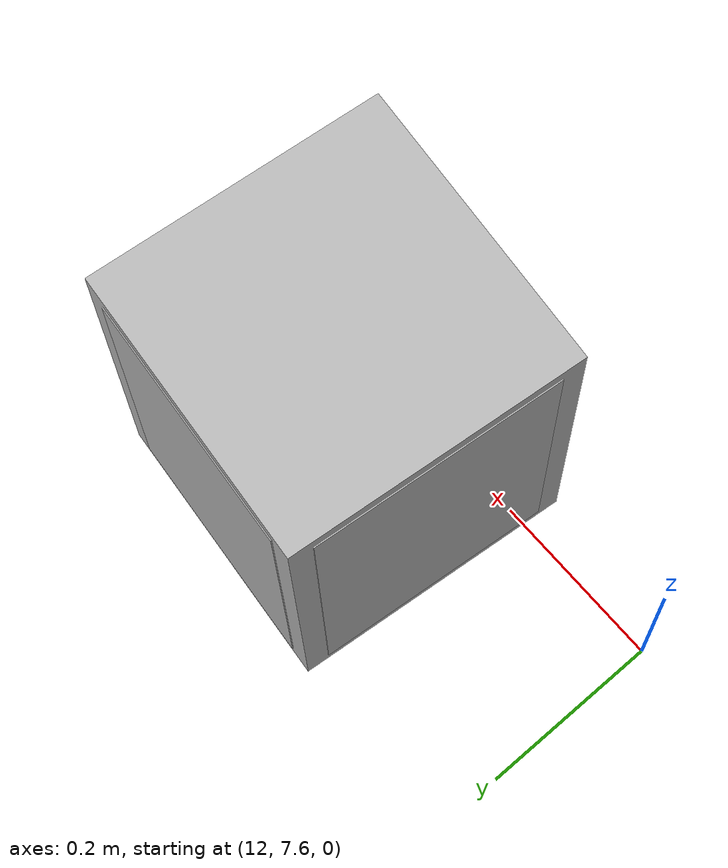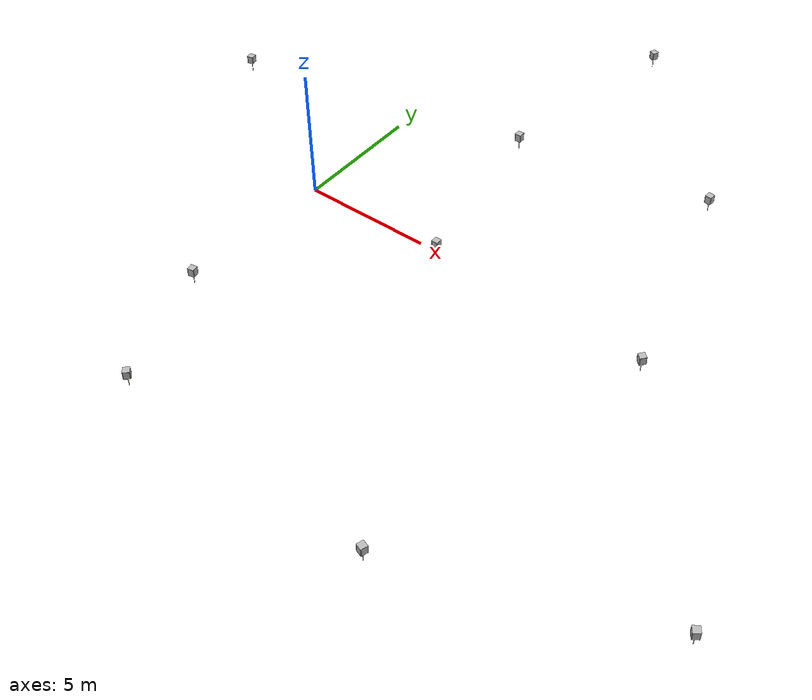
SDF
<sdf version="1.7">
 <world name="marsyard2020">
  <physics type="ode">
   <ode>
    <solver>
     <friction_model>cone_model</friction_model>
     <type>quick</type>
     <iters>50</iters>
     <sor>1.3</sor>
     <use_dynamic_moi_rescaling>0</use_dynamic_moi_rescaling>
    </solver>
    <constraints>
     <cfm>0</cfm>
     <erp>0.2</erp>
     <contact_max_correcting_vel>100</contact_max_correcting_vel>
     <contact_surface_layer>0.001</contact_surface_layer>
    </constraints>
   </ode>
   <max_step_size>0.001</max_step_size>
   <real_time_factor>1</real_time_factor>
   <real_time_update_rate>1000</real_time_update_rate>
  </physics>
  <light name="sun" type="directional">
   <pose>0 0 100 0.5 0.5 0</pose>
   <diffuse>1 1 1 1</diffuse>
   <specular>0.1 0.1 0.1 1</specular>
   <direction>0.1 0.1 -0.9</direction>
   <attenuation>
    <range>20</range>
    <constant>0.5</constant>
    <linear>0.01</linear>
    <quadratic>0.001</quadratic>
   </attenuation>
   <spot><inner_angle>0</inner_angle><outer_angle>0</outer_angle><falloff>0</falloff></spot>
  </light>
  <spherical_coordinates>
   <surface_model>EARTH_WGS84</surface_model>
   <latitude_deg>43.5655</latitude_deg>
   <longitude_deg>1.474</longitude_deg>
   <elevation>150</elevation>
   <heading_deg>180</heading_deg>
  </spherical_coordinates>
  <scene>
   <ambient>0.6 0.6 0.6 1</ambient>
   <sky><clouds><speed>12</speed></clouds></sky>
   <shadows>1</shadows>
   <origin_visual>0</origin_visual>
   <background>0.7 0.7 0.7 1</background>
  </scene>
  <model name="landmark1">
   <pose>5.70277 0 -0.065271 0 -0 0</pose>
   <static>1</static>
   <link name="landmark">
    <visual name="pole_visual">
     <pose>0 0 0.1 0 -0 0</pose>
     <geometry><cylinder><radius>0.01</radius><length>0.4</length></cylinder></geometry>
     <material><script><name>Gazebo/Wood</name><uri>__default__</uri></script></material>
    </visual>
    <collision name="pole_collision">
     <pose>0 0 0.1 0 -0 0</pose>
     <geometry><cylinder><radius>0.01</radius><length>0.4</length></cylinder></geometry>
    </collision>
    <visual name="box_visual">
     <pose>0 0 0.46 0 -0 0</pose>
     <geometry><box><size>0.25 0.25 0.32</size></box></geometry>
     <material><script><name>ERC_Landmark/Box</name><uri>__default__</uri></script></material>
    </visual>
    <collision name="box_collision">
     <pose>0 0 0.46 0 -0 0</pose>
     <geometry><box><size>0.25 0.25 0.32</size></box></geometry>
    </collision>
    <visual name="sheet1">
     <pose>0 0.1235 0.46 0 -0 0</pose>
     <geometry><box><size>0.21 0.005 0.297</size></box></geometry>
     <material><script><name>ERC_Landmark/1</name><uri>__default__</uri></script></material>
    </visual>
    <visual name="sheet2">
     <pose>0 -0.1235 0.46 0 -0 0</pose>
     <geometry><box><size>0.21 0.005 0.297</size></box></geometry>
     <material><script><name>ERC_Landmark/1</name><uri>__default__</uri></script></material>
    </visual>
    <visual name="sheet3">
     <pose>0.1235 0 0.46 0 -0 1.5708</pose>
     <geometry><box><size>0.21 0.005 0.297</size></box></geometry>
     <material><script><name>ERC_Landmark/1</name><uri>__default__</uri></script></material>
    </visual>
    <visual name="sheet4">
     <pose>-0.1235 0 0.46 0 -0 1.5708</pose>
     <geometry><box><size>0.21 0.005 0.297</size></box></geometry>
     <material><script><name>ERC_Landmark/1</name><uri>__default__</uri></script></material>
    </visual>
   </link>
  </model>
  <model name="landmark2">
   <pose>4.50399 6.82642 -0.000455 0 -0 0</pose>
   <static>1</static>
   <link name="landmark">
    <visual name="pole_visual">
     <pose>0 0 0.1 0 -0 0</pose>
     <geometry><cylinder><radius>0.01</radius><length>0.4</length></cylinder></geometry>
     <material><script><name>Gazebo/Wood</name><uri>__default__</uri></script></material>
    </visual>
    <collision name="pole_collision">
     <pose>0 0 0.1 0 -0 0</pose>
     <geometry><cylinder><radius>0.01</radius><length>0.4</length></cylinder></geometry>
    </collision>
    <visual name="box_visual">
     <pose>0 0 0.46 0 -0 0</pose>
     <geometry><box><size>0.25 0.25 0.32</size></box></geometry>
     <material><script><name>ERC_Landmark/Box</name><uri>__default__</uri></script></material>
    </visual>
    <collision name="box_collision">
     <pose>0 0 0.46 0 -0 0</pose>
     <geometry><box><size>0.25 0.25 0.32</size></box></geometry>
    </collision>
    <visual name="sheet1">
     <pose>0 0.1235 0.46 0 -0 0</pose>
     <geometry><box><size>0.21 0.005 0.297</size></box></geometry>
     <material><script><name>ERC_Landmark/2</name><uri>__default__</uri></script></material>
    </visual>
    <visual name="sheet2">
     <pose>0 -0.1235 0.46 0 -0 0</pose>
     <geometry><box><size>0.21 0.005 0.297</size></box></geometry>
     <material><script><name>ERC_Landmark/2</name><uri>__default__</uri></script></material>
    </visual>
    <visual name="sheet3">
     <pose>0.1235 0 0.46 0 -0 1.5708</pose>
     <geometry><box><size>0.21 0.005 0.297</size></box></geometry>
     <material><script><name>ERC_Landmark/2</name><uri>__default__</uri></script></material>
    </visual>
    <visual name="sheet4">
     <pose>-0.1235 0 0.46 0 -0 1.5708</pose>
     <geometry><box><size>0.21 0.005 0.297</size></box></geometry>
     <material><script><name>ERC_Landmark/2</name><uri>__default__</uri></script></material>
    </visual>
   </link>
  </model>
  <model name="landmark3">
   <pose>14.3295 -0.4288 -0.087178 0 -0 0.86</pose>
   <static>1</static>
   <link name="landmark">
    <visual name="pole_visual">
     <pose>0 0 0.1 0 -0 0</pose>
     <geometry><cylinder><radius>0.01</radius><length>0.4</length></cylinder></geometry>
     <material><script><name>Gazebo/Wood</name><uri>__default__</uri></script></material>
    </visual>
    <collision name="pole_collision">
     <pose>0 0 0.1 0 -0 0</pose>
     <geometry><cylinder><radius>0.01</radius><length>0.4</length></cylinder></geometry>
    </collision>
    <visual name="box_visual">
     <pose>0 0 0.46 0 -0 0</pose>
     <geometry><box><size>0.25 0.25 0.32</size></box></geometry>
     <material><script><name>ERC_Landmark/Box</name><uri>__default__</uri></script></material>
    </visual>
    <collision name="box_collision">
     <pose>0 0 0.46 0 -0 0</pose>
     <geometry><box><size>0.25 0.25 0.32</size></box></geometry>
    </collision>
    <visual name="sheet1">
     <pose>0 0.1235 0.46 0 -0 0</pose>
     <geometry><box><size>0.21 0.005 0.297</size></box></geometry>
     <material><script><name>ERC_Landmark/3</name><uri>__default__</uri></script></material>
    </visual>
    <visual name="sheet2">
     <pose>0 -0.1235 0.46 0 -0 0</pose>
     <geometry><box><size>0.21 0.005 0.297</size></box></geometry>
     <material><script><name>ERC_Landmark/3</name><uri>__default__</uri></script></material>
    </visual>
    <visual name="sheet3">
     <pose>0.1235 0 0.46 0 -0 1.5708</pose>
     <geometry><box><size>0.21 0.005 0.297</size></box></geometry>
     <material><script><name>ERC_Landmark/3</name><uri>__default__</uri></script></material>
    </visual>
    <visual name="sheet4">
     <pose>-0.1235 0 0.46 0 -0 1.5708</pose>
     <geometry><box><size>0.21 0.005 0.297</size></box></geometry>
     <material><script><name>ERC_Landmark/3</name><uri>__default__</uri></script></material>
    </visual>
   </link>
  </model>
  <model name="landmark4">
   <pose>29.2159 5.30052 -0.069001 0 -0 0.53</pose>
   <static>1</static>
   <link name="landmark">
    <visual name="pole_visual">
     <pose>0 0 0.1 0 -0 0</pose>
     <geometry><cylinder><radius>0.01</radius><length>0.4</length></cylinder></geometry>
     <material><script><name>Gazebo/Wood</name><uri>__default__</uri></script></material>
    </visual>
    <collision name="pole_collision">
     <pose>0 0 0.1 0 -0 0</pose>
     <geometry><cylinder><radius>0.01</radius><length>0.4</length></cylinder></geometry>
    </collision>
    <visual name="box_visual">
     <pose>0 0 0.46 0 -0 0</pose>
     <geometry><box><size>0.25 0.25 0.32</size></box></geometry>
     <material><script><name>ERC_Landmark/Box</name><uri>__default__</uri></script></material>
    </visual>
    <collision name="box_collision">
     <pose>0 0 0.46 0 -0 0</pose>
     <geometry><box><size>0.25 0.25 0.32</size></box></geometry>
    </collision>
    <visual name="sheet1">
     <pose>0 0.1235 0.46 0 -0 0</pose>
     <geometry><box><size>0.21 0.005 0.297</size></box></geometry>
     <material><script><name>ERC_Landmark/4</name><uri>__default__</uri></script></material>
    </visual>
    <visual name="sheet2">
     <pose>0 -0.1235 0.46 0 -0 0</pose>
     <geometry><box><size>0.21 0.005 0.297</size></box></geometry>
     <material><script><name>ERC_Landmark/4</name><uri>__default__</uri></script></material>
    </visual>
    <visual name="sheet3">
     <pose>0.1235 0 0.46 0 -0 1.5708</pose>
     <geometry><box><size>0.21 0.005 0.297</size></box></geometry>
     <material><script><name>ERC_Landmark/4</name><uri>__default__</uri></script></material>
    </visual>
    <visual name="sheet4">
     <pose>-0.1235 0 0.46 0 -0 1.5708</pose>
     <geometry><box><size>0.21 0.005 0.297</size></box></geometry>
     <material><script><name>ERC_Landmark/4</name><uri>__default__</uri></script></material>
    </visual>
   </link>
  </model>
  <model name="landmark5">
   <pose>12.1035 -11.7148 0.377463 0 -0 1.25</pose>
   <static>1</static>
   <link name="landmark">
    <visual name="pole_visual">
     <pose>0 0 0.1 0 -0 0</pose>
     <geometry><cylinder><radius>0.01</radius><length>0.4</length></cylinder></geometry>
     <material><script><name>Gazebo/Wood</name><uri>__default__</uri></script></material>
    </visual>
    <collision name="pole_collision">
     <pose>0 0 0.1 0 -0 0</pose>
     <geometry><cylinder><radius>0.01</radius><length>0.4</length></cylinder></geometry>
    </collision>
    <visual name="box_visual">
     <pose>0 0 0.46 0 -0 0</pose>
     <geometry><box><size>0.25 0.25 0.32</size></box></geometry>
     <material><script><name>ERC_Landmark/Box</name><uri>__default__</uri></script></material>
    </visual>
    <collision name="box_collision">
     <pose>0 0 0.46 0 -0 0</pose>
     <geometry><box><size>0.25 0.25 0.32</size></box></geometry>
    </collision>
    <visual name="sheet1">
     <pose>0 0.1235 0.46 0 -0 0</pose>
     <geometry><box><size>0.21 0.005 0.297</size></box></geometry>
     <material><script><name>ERC_Landmark/5</name><uri>__default__</uri></script></material>
    </visual>
    <visual name="sheet2">
     <pose>0 -0.1235 0.46 0 -0 0</pose>
     <geometry><box><size>0.21 0.005 0.297</size></box></geometry>
     <material><script><name>ERC_Landmark/5</name><uri>__default__</uri></script></material>
    </visual>
    <visual name="sheet3">
     <pose>0.1235 0 0.46 0 -0 1.5708</pose>
     <geometry><box><size>0.21 0.005 0.297</size></box></geometry>
     <material><script><name>ERC_Landmark/5</name><uri>__default__</uri></script></material>
    </visual>
    <visual name="sheet4">
     <pose>-0.1235 0 0.46 0 -0 1.5708</pose>
     <geometry><box><size>0.21 0.005 0.297</size></box></geometry>
     <material><script><name>ERC_Landmark/5</name><uri>__default__</uri></script></material>
    </visual>
   </link>
  </model>
  <model name="landmark6">
   <pose>-2.94666 29.2843 -2.62747 0 -0 0.73</pose>
   <static>1</static>
   <link name="landmark">
    <visual name="pole_visual">
     <pose>0 0 0.1 0 -0 0</pose>
     <geometry><cylinder><radius>0.01</radius><length>0.4</length></cylinder></geometry>
     <material><script><name>Gazebo/Wood</name><uri>__default__</uri></script></material>
    </visual>
    <collision name="pole_collision">
     <pose>0 0 0.1 0 -0 0</pose>
     <geometry><cylinder><radius>0.01</radius><length>0.4</length></cylinder></geometry>
    </collision>
    <visual name="box_visual">
     <pose>0 0 0.46 0 -0 0</pose>
     <geometry><box><size>0.25 0.25 0.32</size></box></geometry>
     <material><script><name>ERC_Landmark/Box</name><uri>__default__</uri></script></material>
    </visual>
    <collision name="box_collision">
     <pose>0 0 0.46 0 -0 0</pose>
     <geometry><box><size>0.25 0.25 0.32</size></box></geometry>
    </collision>
    <visual name="sheet1">
     <pose>0 0.1235 0.46 0 -0 0</pose>
     <geometry><box><size>0.21 0.005 0.297</size></box></geometry>
     <material><script><name>ERC_Landmark/6</name><uri>__default__</uri></script></material>
    </visual>
    <visual name="sheet2">
     <pose>0 -0.1235 0.46 0 -0 0</pose>
     <geometry><box><size>0.21 0.005 0.297</size></box></geometry>
     <material><script><name>ERC_Landmark/6</name><uri>__default__</uri></script></material>
    </visual>
    <visual name="sheet3">
     <pose>0.1235 0 0.46 0 -0 1.5708</pose>
     <geometry><box><size>0.21 0.005 0.297</size></box></geometry>
     <material><script><name>ERC_Landmark/6</name><uri>__default__</uri></script></material>
    </visual>
    <visual name="sheet4">
     <pose>-0.1235 0 0.46 0 -0 1.5708</pose>
     <geometry><box><size>0.21 0.005 0.297</size></box></geometry>
     <material><script><name>ERC_Landmark/6</name><uri>__default__</uri></script></material>
    </visual>
   </link>
  </model>
  <model name="landmark7">
   <pose>-7.46054 4.54439 -0.032864 0 -0 0.19</pose>
   <static>1</static>
   <link name="landmark">
    <visual name="pole_visual">
     <pose>0 0 0.1 0 -0 0</pose>
     <geometry><cylinder><radius>0.01</radius><length>0.4</length></cylinder></geometry>
     <material><script><name>Gazebo/Wood</name><uri>__default__</uri></script></material>
    </visual>
    <collision name="pole_collision">
     <pose>0 0 0.1 0 -0 0</pose>
     <geometry><cylinder><radius>0.01</radius><length>0.4</length></cylinder></geometry>
    </collision>
    <visual name="box_visual">
     <pose>0 0 0.46 0 -0 0</pose>
     <geometry><box><size>0.25 0.25 0.32</size></box></geometry>
     <material><script><name>ERC_Landmark/Box</name><uri>__default__</uri></script></material>
    </visual>
    <collision name="box_collision">
     <pose>0 0 0.46 0 -0 0</pose>
     <geometry><box><size>0.25 0.25 0.32</size></box></geometry>
    </collision>
    <visual name="sheet1">
     <pose>0 0.1235 0.46 0 -0 0</pose>
     <geometry><box><size>0.21 0.005 0.297</size></box></geometry>
     <material><script><name>ERC_Landmark/7</name><uri>__default__</uri></script></material>
    </visual>
    <visual name="sheet2">
     <pose>0 -0.1235 0.46 0 -0 0</pose>
     <geometry><box><size>0.21 0.005 0.297</size></box></geometry>
     <material><script><name>ERC_Landmark/7</name><uri>__default__</uri></script></material>
    </visual>
    <visual name="sheet3">
     <pose>0.1235 0 0.46 0 -0 1.5708</pose>
     <geometry><box><size>0.21 0.005 0.297</size></box></geometry>
     <material><script><name>ERC_Landmark/7</name><uri>__default__</uri></script></material>
    </visual>
    <visual name="sheet4">
     <pose>-0.1235 0 0.46 0 -0 1.5708</pose>
     <geometry><box><size>0.21 0.005 0.297</size></box></geometry>
     <material><script><name>ERC_Landmark/7</name><uri>__default__</uri></script></material>
    </visual>
   </link>
  </model>
  <model name="landmark8">
   <pose>18.567 -18.5264 0.0577 0 -0 1.16</pose>
   <static>1</static>
   <link name="landmark">
    <visual name="pole_visual">
     <pose>0 0 0.1 0 -0 0</pose>
     <geometry><cylinder><radius>0.01</radius><length>0.4</length></cylinder></geometry>
     <material><script><name>Gazebo/Wood</name><uri>__default__</uri></script></material>
    </visual>
    <collision name="pole_collision">
     <pose>0 0 0.1 0 -0 0</pose>
     <geometry><cylinder><radius>0.01</radius><length>0.4</length></cylinder></geometry>
    </collision>
    <visual name="box_visual">
     <pose>0 0 0.46 0 -0 0</pose>
     <geometry><box><size>0.25 0.25 0.32</size></box></geometry>
     <material><script><name>ERC_Landmark/Box</name><uri>__default__</uri></script></material>
    </visual>
    <collision name="box_collision">
     <pose>0 0 0.46 0 -0 0</pose>
     <geometry><box><size>0.25 0.25 0.32</size></box></geometry>
    </collision>
    <visual name="sheet1">
     <pose>0 0.1235 0.46 0 -0 0</pose>
     <geometry><box><size>0.21 0.005 0.297</size></box></geometry>
     <material><script><name>ERC_Landmark/8</name><uri>__default__</uri></script></material>
    </visual>
    <visual name="sheet2">
     <pose>0 -0.1235 0.46 0 -0 0</pose>
     <geometry><box><size>0.21 0.005 0.297</size></box></geometry>
     <material><script><name>ERC_Landmark/8</name><uri>__default__</uri></script></material>
    </visual>
    <visual name="sheet3">
     <pose>0.1235 0 0.46 0 -0 1.5708</pose>
     <geometry><box><size>0.21 0.005 0.297</size></box></geometry>
     <material><script><name>ERC_Landmark/8</name><uri>__default__</uri></script></material>
    </visual>
    <visual name="sheet4">
     <pose>-0.1235 0 0.46 0 -0 1.5708</pose>
     <geometry><box><size>0.21 0.005 0.297</size></box></geometry>
     <material><script><name>ERC_Landmark/8</name><uri>__default__</uri></script></material>
    </visual>
   </link>
  </model>
  <model name="landmark9">
   <pose>12.2289 7.78507 0.127643 0 -0 1.47</pose>
   <static>1</static>
   <link name="landmark">
    <visual name="pole_visual">
     <pose>0 0 0.1 0 -0 0</pose>
     <geometry><cylinder><radius>0.01</radius><length>0.4</length></cylinder></geometry>
     <material><script><name>Gazebo/Wood</name><uri>__default__</uri></script></material>
    </visual>
    <collision name="pole_collision">
     <pose>0 0 0.1 0 -0 0</pose>
     <geometry><cylinder><radius>0.01</radius><length>0.4</length></cylinder></geometry>
    </collision>
    <visual name="box_visual">
     <pose>0 0 0.46 0 -0 0</pose>
     <geometry><box><size>0.25 0.25 0.32</size></box></geometry>
     <material><script><name>ERC_Landmark/Box</name><uri>__default__</uri></script></material>
    </visual>
    <collision name="box_collision">
     <pose>0 0 0.46 0 -0 0</pose>
     <geometry><box><size>0.25 0.25 0.32</size></box></geometry>
    </collision>
    <visual name="sheet1">
     <pose>0 0.1235 0.46 0 -0 0</pose>
     <geometry><box><size>0.21 0.005 0.297</size></box></geometry>
     <material><script><name>ERC_Landmark/9</name><uri>__default__</uri></script></material>
    </visual>
    <visual name="sheet2">
     <pose>0 -0.1235 0.46 0 -0 0</pose>
     <geometry><box><size>0.21 0.005 0.297</size></box></geometry>
     <material><script><name>ERC_Landmark/9</name><uri>__default__</uri></script></material>
    </visual>
    <visual name="sheet3">
     <pose>0.1235 0 0.46 0 -0 1.5708</pose>
     <geometry><box><size>0.21 0.005 0.297</size></box></geometry>
     <material><script><name>ERC_Landmark/9</name><uri>__default__</uri></script></material>
    </visual>
    <visual name="sheet4">
     <pose>-0.1235 0 0.46 0 -0 1.5708</pose>
     <geometry><box><size>0.21 0.005 0.297</size></box></geometry>
     <material><script><name>ERC_Landmark/9</name><uri>__default__</uri></script></material>
    </visual>
   </link>
  </model>
  <model name="landmark10">
   <pose>20.6291 -8.1918 -0.069001 0 -0 0.61</pose>
   <static>1</static>
   <link name="landmark">
    <visual name="pole_visual">
     <pose>0 0 0.1 0 -0 0</pose>
     <geometry><cylinder><radius>0.01</radius><length>0.4</length></cylinder></geometry>
     <material><script><name>Gazebo/Wood</name><uri>__default__</uri></script></material>
    </visual>
    <collision name="pole_collision">
     <pose>0 0 0.1 0 -0 0</pose>
     <geometry><cylinder><radius>0.01</radius><length>0.4</length></cylinder></geometry>
    </collision>
    <visual name="box_visual">
     <pose>0 0 0.46 0 -0 0</pose>
     <geometry><box><size>0.25 0.25 0.32</size></box></geometry>
     <material><script><name>ERC_Landmark/Box</name><uri>__default__</uri></script></material>
    </visual>
    <collision name="box_collision">
     <pose>0 0 0.46 0 -0 0</pose>
     <geometry><box><size>0.25 0.25 0.32</size></box></geometry>
    </collision>
    <visual name="sheet1">
     <pose>0 0.1235 0.46 0 -0 0</pose>
     <geometry><box><size>0.21 0.005 0.297</size></box></geometry>
     <material><script><name>ERC_Landmark/10</name><uri>__default__</uri></script></material>
    </visual>
    <visual name="sheet2">
     <pose>0 -0.1235 0.46 0 -0 0</pose>
     <geometry><box><size>0.21 0.005 0.297</size></box></geometry>
     <material><script><name>ERC_Landmark/10</name><uri>__default__</uri></script></material>
    </visual>
    <visual name="sheet3">
     <pose>0.1235 0 0.46 0 -0 1.5708</pose>
     <geometry><box><size>0.21 0.005 0.297</size></box></geometry>
     <material><script><name>ERC_Landmark/10</name><uri>__default__</uri></script></material>
    </visual>
    <visual name="sheet4">
     <pose>-0.1235 0 0.46 0 -0 1.5708</pose>
     <geometry><box><size>0.21 0.005 0.297</size></box></geometry>
     <material><script><name>ERC_Landmark/10</name><uri>__default__</uri></script></material>
    </visual>
   </link>
  </model>
  <model name="landmark11">
   <pose>29.6956 -16.6724 0.078902 0 -0 0.16</pose>
   <static>1</static>
   <link name="landmark">
    <visual name="pole_visual">
     <pose>0 0 0.1 0 -0 0</pose>
     <geometry><cylinder><radius>0.01</radius><length>0.4</length></cylinder></geometry>
     <material><script><name>Gazebo/Wood</name><uri>__default__</uri></script></material>
    </visual>
    <collision name="pole_collision">
     <pose>0 0 0.1 0 -0 0</pose>
     <geometry><cylinder><radius>0.01</radius><length>0.4</length></cylinder></geometry>
    </collision>
    <visual name="box_visual">
     <pose>0 0 0.46 0 -0 0</pose>
     <geometry><box><size>0.25 0.25 0.32</size></box></geometry>
     <material><script><name>ERC_Landmark/Box</name><uri>__default__</uri></script></material>
    </visual>
    <collision name="box_collision">
     <pose>0 0 0.46 0 -0 0</pose>
     <geometry><box><size>0.25 0.25 0.32</size></box></geometry>
    </collision>
    <visual name="sheet1">
     <pose>0 0.1235 0.46 0 -0 0</pose>
     <geometry><box><size>0.21 0.005 0.297</size></box></geometry>
     <material><script><name>ERC_Landmark/11</name><uri>__default__</uri></script></material>
    </visual>
    <visual name="sheet2">
     <pose>0 -0.1235 0.46 0 -0 0</pose>
     <geometry><box><size>0.21 0.005 0.297</size></box></geometry>
     <material><script><name>ERC_Landmark/11</name><uri>__default__</uri></script></material>
    </visual>
    <visual name="sheet3">
     <pose>0.1235 0 0.46 0 -0 1.5708</pose>
     <geometry><box><size>0.21 0.005 0.297</size></box></geometry>
     <material><script><name>ERC_Landmark/11</name><uri>__default__</uri></script></material>
    </visual>
    <visual name="sheet4">
     <pose>-0.1235 0 0.46 0 -0 1.5708</pose>
     <geometry><box><size>0.21 0.005 0.297</size></box></geometry>
     <material><script><name>ERC_Landmark/11</name><uri>__default__</uri></script></material>
    </visual>
   </link>
  </model>
  <model name="landmark12">
   <pose>-0.118828 -6.18683 -0.09303 0 -0 0.21</pose>
   <static>1</static>
   <link name="landmark">
    <visual name="pole_visual">
     <pose>0 0 0.1 0 -0 0</pose>
     <geometry><cylinder><radius>0.01</radius><length>0.4</length></cylinder></geometry>
     <material><script><name>Gazebo/Wood</name><uri>__default__</uri></script></material>
    </visual>
    <collision name="pole_collision">
     <pose>0 0 0.1 0 -0 0</pose>
     <geometry><cylinder><radius>0.01</radius><length>0.4</length></cylinder></geometry>
    </collision>
    <visual name="box_visual">
     <pose>0 0 0.46 0 -0 0</pose>
     <geometry><box><size>0.25 0.25 0.32</size></box></geometry>
     <material><script><name>ERC_Landmark/Box</name><uri>__default__</uri></script></material>
    </visual>
    <collision name="box_collision">
     <pose>0 0 0.46 0 -0 0</pose>
     <geometry><box><size>0.25 0.25 0.32</size></box></geometry>
    </collision>
    <visual name="sheet1">
     <pose>0 0.1235 0.46 0 -0 0</pose>
     <geometry><box><size>0.21 0.005 0.297</size></box></geometry>
     <material><script><name>ERC_Landmark/12</name><uri>__default__</uri></script></material>
    </visual>
    <visual name="sheet2">
     <pose>0 -0.1235 0.46 0 -0 0</pose>
     <geometry><box><size>0.21 0.005 0.297</size></box></geometry>
     <material><script><name>ERC_Landmark/12</name><uri>__default__</uri></script></material>
    </visual>
    <visual name="sheet3">
     <pose>0.1235 0 0.46 0 -0 1.5708</pose>
     <geometry><box><size>0.21 0.005 0.297</size></box></geometry>
     <material><script><name>ERC_Landmark/12</name><uri>__default__</uri></script></material>
    </visual>
    <visual name="sheet4">
     <pose>-0.1235 0 0.46 0 -0 1.5708</pose>
     <geometry><box><size>0.21 0.005 0.297</size></box></geometry>
     <material><script><name>ERC_Landmark/12</name><uri>__default__</uri></script></material>
    </visual>
   </link>
  </model>
  <model name="landmark13">
   <pose>30.8896 -5.98537 0.008829 0 -0 0.61</pose>
   <static>1</static>
   <link name="landmark">
    <visual name="pole_visual">
     <pose>0 0 0.1 0 -0 0</pose>
     <geometry><cylinder><radius>0.01</radius><length>0.4</length></cylinder></geometry>
     <material><script><name>Gazebo/Wood</name><uri>__default__</uri></script></material>
    </visual>
    <collision name="pole_collision">
     <pose>0 0 0.1 0 -0 0</pose>
     <geometry><cylinder><radius>0.01</radius><length>0.4</length></cylinder></geometry>
    </collision>
    <visual name="box_visual">
     <pose>0 0 0.46 0 -0 0</pose>
     <geometry><box><size>0.25 0.25 0.32</size></box></geometry>
     <material><script><name>ERC_Landmark/Box</name><uri>__default__</uri></script></material>
    </visual>
    <collision name="box_collision">
     <pose>0 0 0.46 0 -0 0</pose>
     <geometry><box><size>0.25 0.25 0.32</size></box></geometry>
    </collision>
    <visual name="sheet1">
     <pose>0 0.1235 0.46 0 -0 0</pose>
     <geometry><box><size>0.21 0.005 0.297</size></box></geometry>
     <material><script><name>ERC_Landmark/13</name><uri>__default__</uri></script></material>
    </visual>
    <visual name="sheet2">
     <pose>0 -0.1235 0.46 0 -0 0</pose>
     <geometry><box><size>0.21 0.005 0.297</size></box></geometry>
     <material><script><name>ERC_Landmark/13</name><uri>__default__</uri></script></material>
    </visual>
    <visual name="sheet3">
     <pose>0.1235 0 0.46 0 -0 1.5708</pose>
     <geometry><box><size>0.21 0.005 0.297</size></box></geometry>
     <material><script><name>ERC_Landmark/13</name><uri>__default__</uri></script></material>
    </visual>
    <visual name="sheet4">
     <pose>-0.1235 0 0.46 0 -0 1.5708</pose>
     <geometry><box><size>0.21 0.005 0.297</size></box></geometry>
     <material><script><name>ERC_Landmark/13</name><uri>__default__</uri></script></material>
    </visual>
   </link>
  </model>
  <model name="landmark14">
   <pose>1.71706 -10.9088 -0.009376 0 -0 0.73</pose>
   <static>1</static>
   <link name="landmark">
    <visual name="pole_visual">
     <pose>0 0 0.1 0 -0 0</pose>
     <geometry><cylinder><radius>0.01</radius><length>0.4</length></cylinder></geometry>
     <material><script><name>Gazebo/Wood</name><uri>__default__</uri></script></material>
    </visual>
    <collision name="pole_collision">
     <pose>0 0 0.1 0 -0 0</pose>
     <geometry><cylinder><radius>0.01</radius><length>0.4</length></cylinder></geometry>
    </collision>
    <visual name="box_visual">
     <pose>0 0 0.46 0 -0 0</pose>
     <geometry><box><size>0.25 0.25 0.32</size></box></geometry>
     <material><script><name>ERC_Landmark/Box</name><uri>__default__</uri></script></material>
    </visual>
    <collision name="box_collision">
     <pose>0 0 0.46 0 -0 0</pose>
     <geometry><box><size>0.25 0.25 0.32</size></box></geometry>
    </collision>
    <visual name="sheet1">
     <pose>0 0.1235 0.46 0 -0 0</pose>
     <geometry><box><size>0.21 0.005 0.297</size></box></geometry>
     <material><script><name>ERC_Landmark/14</name><uri>__default__</uri></script></material>
    </visual>
    <visual name="sheet2">
     <pose>0 -0.1235 0.46 0 -0 0</pose>
     <geometry><box><size>0.21 0.005 0.297</size></box></geometry>
     <material><script><name>ERC_Landmark/14</name><uri>__default__</uri></script></material>
    </visual>
    <visual name="sheet3">
     <pose>0.1235 0 0.46 0 -0 1.5708</pose>
     <geometry><box><size>0.21 0.005 0.297</size></box></geometry>
     <material><script><name>ERC_Landmark/14</name><uri>__default__</uri></script></material>
    </visual>
    <visual name="sheet4">
     <pose>-0.1235 0 0.46 0 -0 1.5708</pose>
     <geometry><box><size>0.21 0.005 0.297</size></box></geometry>
     <material><script><name>ERC_Landmark/14</name><uri>__default__</uri></script></material>
    </visual>
   </link>
  </model>
  <model name="landmark15">
   <pose>5.81393 14.724 0.114653 0 0 -0.457594</pose>
   <static>1</static>
   <link name="landmark">
    <visual name="pole_visual">
     <pose>0 0 0.1 0 -0 0</pose>
     <geometry><cylinder><radius>0.01</radius><length>0.4</length></cylinder></geometry>
     <material><script><name>Gazebo/Wood</name><uri>__default__</uri></script></material>
    </visual>
    <collision name="pole_collision">
     <pose>0 0 0.1 0 -0 0</pose>
     <geometry><cylinder><radius>0.01</radius><length>0.4</length></cylinder></geometry>
    </collision>
    <visual name="box_visual">
     <pose>0 0 0.46 0 -0 0</pose>
     <geometry><box><size>0.25 0.25 0.32</size></box></geometry>
     <material><script><name>ERC_Landmark/Box</name><uri>__default__</uri></script></material>
    </visual>
    <collision name="box_collision">
     <pose>0 0 0.46 0 -0 0</pose>
     <geometry><box><size>0.25 0.25 0.32</size></box></geometry>
    </collision>
    <visual name="sheet1">
     <pose>0 0.1235 0.46 0 -0 0</pose>
     <geometry><box><size>0.21 0.005 0.297</size></box></geometry>
     <material><script><name>ERC_Landmark/15</name><uri>__default__</uri></script></material>
    </visual>
    <visual name="sheet2">
     <pose>0 -0.1235 0.46 0 -0 0</pose>
     <geometry><box><size>0.21 0.005 0.297</size></box></geometry>
     <material><script><name>ERC_Landmark/15</name><uri>__default__</uri></script></material>
    </visual>
    <visual name="sheet3">
     <pose>0.1235 0 0.46 0 -0 1.5708</pose>
     <geometry><box><size>0.21 0.005 0.297</size></box></geometry>
     <material><script><name>ERC_Landmark/15</name><uri>__default__</uri></script></material>
    </visual>
    <visual name="sheet4">
     <pose>-0.1235 0 0.46 0 -0 1.5708</pose>
     <geometry><box><size>0.21 0.005 0.297</size></box></geometry>
     <material><script><name>ERC_Landmark/15</name><uri>__default__</uri></script></material>
    </visual>
   </link>
  </model>
  <gravity>0 0 -9.8</gravity>
  <magnetic_field>6e-06 2.3e-05 -4.2e-05</magnetic_field>
  <atmosphere type="adiabatic"/>
  <audio><device>default</device></audio>
 </world>
</sdf>
